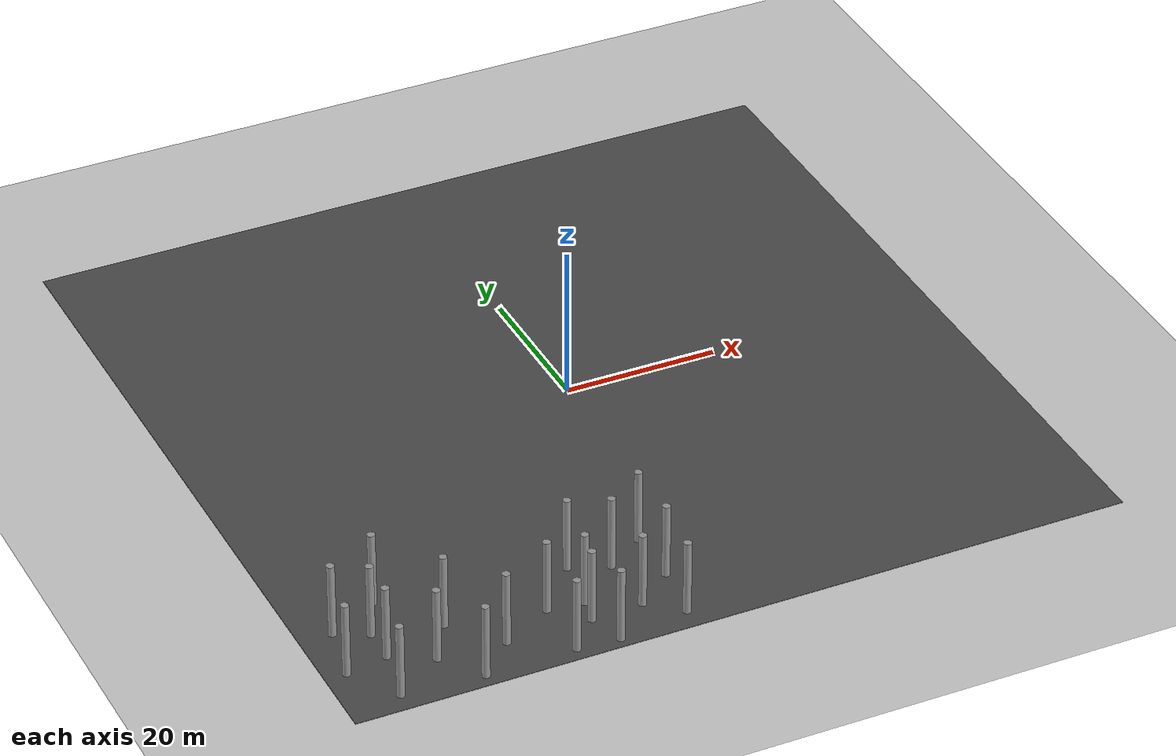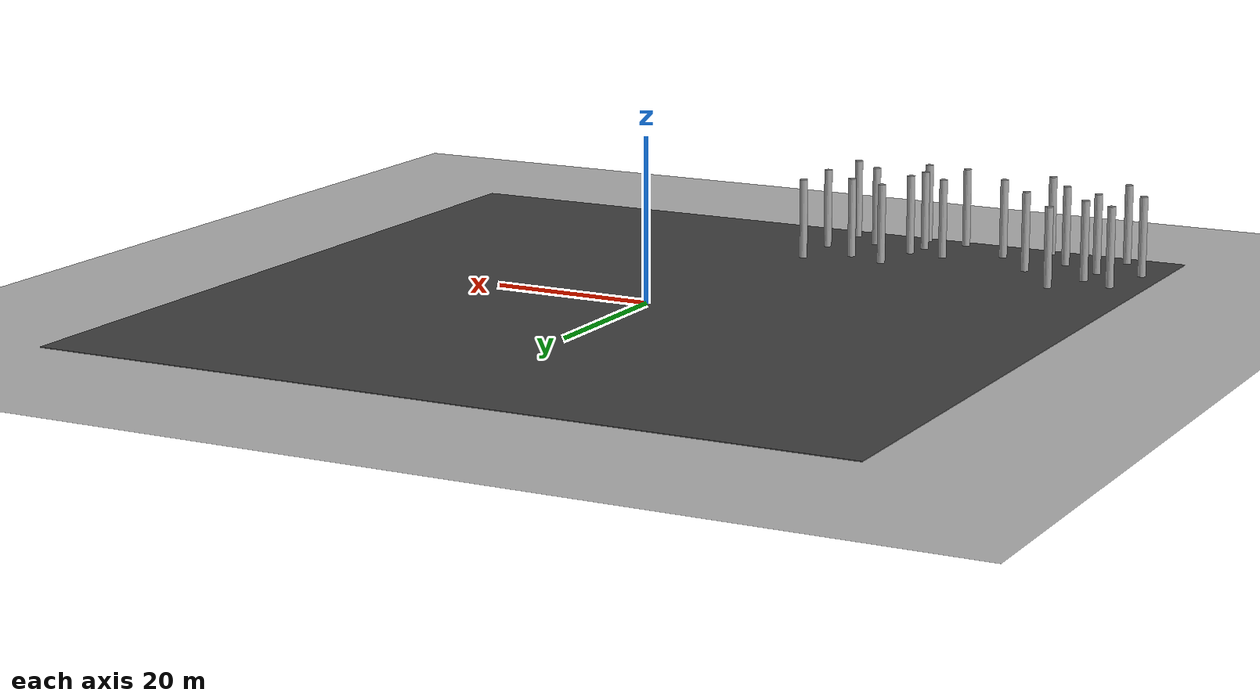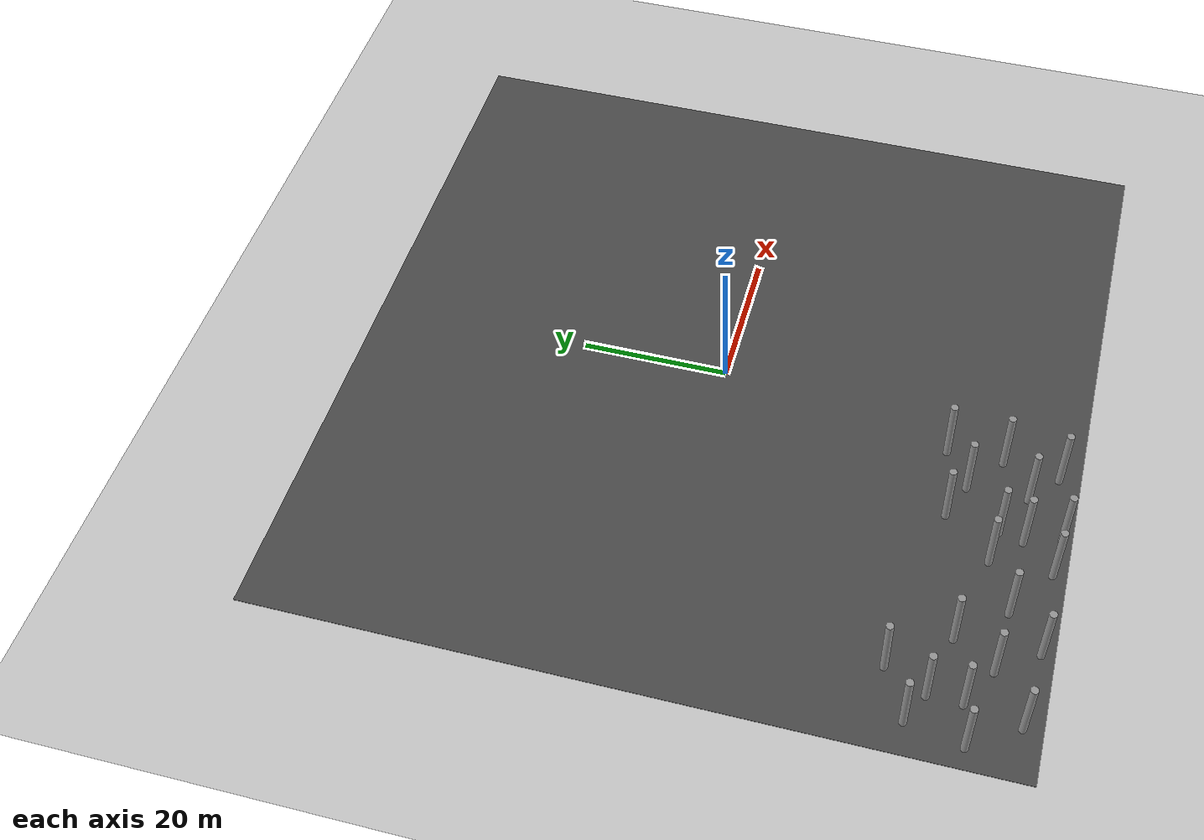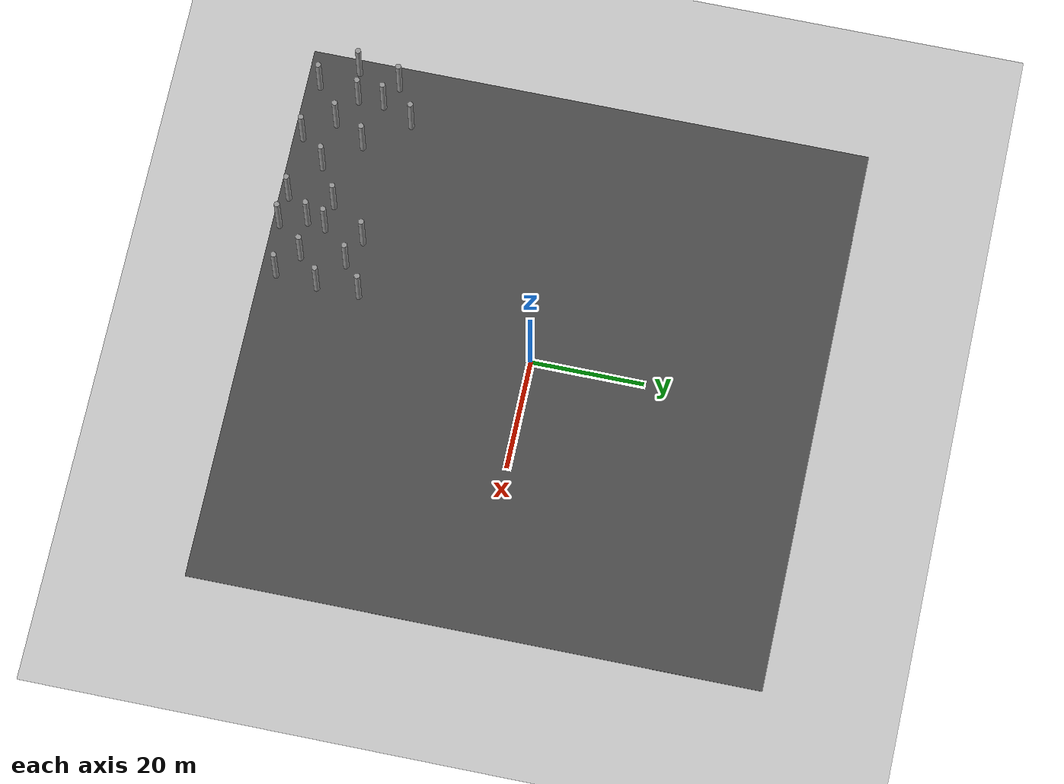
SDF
<sdf version="1.6">
 <world name="default">
  <model name="ground_plane">
   <static>1</static>
   <link name="link">
    <collision name="collision">
     <geometry><plane><normal>0 0 1</normal><size>100 100</size></plane></geometry>
     <surface><friction><ode><mu>100</mu><mu2>50</mu2></ode></friction></surface>
    </collision>
    <visual name="visual">
     <cast_shadows>0</cast_shadows>
     <geometry><plane><normal>0 0 1</normal><size>100 100</size></plane></geometry>
     <material>
      <script><uri>file://media/materials/scripts/gazebo.material</uri><name>Gazebo/Grey</name></script>
     </material>
    </visual>
   </link>
  </model>
  <model name="asphalt_plane">
   <static>1</static>
   <link name="link">
    <collision name="collision"><geometry><box><size>100 100 0.1</size></box></geometry></collision>
    <visual name="visual">
     <cast_shadows>0</cast_shadows>
     <geometry><box><size>100 100 0.1</size></box></geometry>
     <material>
      <script>
       <uri>model://asphalt_plane/materials/scripts</uri>
       <uri>model://asphalt_plane/materials/textures</uri>
       <name>vrc/asphalt</name>
      </script>
     </material>
    </visual>
   </link>
   <pose>0.078502 0.417861 0 0 -0 0</pose>
  </model>
  <model name="forest">
   <link name="link_clone_13_clone_21">
    <pose>-20.8987 -38.6392 0 0 -0 0</pose>
    <inertial>
     <mass>1000</mass>
     <inertia><ixx>0.145833</ixx><ixy>0</ixy><ixz>0</ixz><iyy>0.145833</iyy><iyz>0</iyz><izz>0.125</izz></inertia>
     <pose>0 0 5 0 -0 0</pose>
    </inertial>
    <visual name="visual">
     <geometry><cylinder><radius>0.5</radius><length>10</length></cylinder></geometry>
     <material>
      <script><name>Gazebo/Grey</name><uri>file://media/materials/scripts/gazebo.material</uri></script>
      <ambient>0.3 0.3 0.3 1</ambient>
      <diffuse>0.7 0.7 0.7 1</diffuse>
      <specular>0.01 0.01 0.01 1</specular>
      <emissive>0 0 0 1</emissive>
      <shader type="vertex"><normal_map>__default__</normal_map></shader>
     </material>
     <pose>0 0 5 0 -0 0</pose>
    </visual>
    <collision name="collision">
     <pose>0 0 5 0 -0 0</pose>
     <geometry><cylinder><radius>0.5</radius><length>10</length></cylinder></geometry>
     <surface>
      <friction>
       <ode><mu>1</mu><mu2>1</mu2><fdir1>0 0 0</fdir1><slip1>0</slip1><slip2>0</slip2></ode>
       <torsional>
        <coefficient>1</coefficient>
        <patch_radius>0</patch_radius>
        <surface_radius>0</surface_radius>
        <use_patch_radius>1</use_patch_radius>
        <ode><slip>0</slip></ode>
       </torsional>
      </friction>
      <bounce><restitution_coefficient>0</restitution_coefficient><threshold>1e+06</threshold></bounce>
      <contact>
       <collide_without_contact>0</collide_without_contact>
       <collide_without_contact_bitmask>1</collide_without_contact_bitmask>
       <collide_bitmask>1</collide_bitmask>
       <ode>
        <soft_cfm>0</soft_cfm>
        <soft_erp>0.2</soft_erp>
        <kp>1e+13</kp>
        <kd>1</kd>
        <max_vel>0.01</max_vel>
        <min_depth>0</min_depth>
       </ode>
       <bullet>
        <split_impulse>1</split_impulse>
        <split_impulse_penetration_threshold>-0.01</split_impulse_penetration_threshold>
        <soft_cfm>0</soft_cfm>
        <soft_erp>0.2</soft_erp>
        <kp>1e+13</kp>
        <kd>1</kd>
       </bullet>
      </contact>
     </surface>
    </collision>
   </link>
   <link name="link_clone_13_clone_23">
    <pose>-15.2761 -32.1957 0 0 -0 0</pose>
    <inertial>
     <mass>1000</mass>
     <inertia><ixx>0.145833</ixx><ixy>0</ixy><ixz>0</ixz><iyy>0.145833</iyy><iyz>0</iyz><izz>0.125</izz></inertia>
     <pose>0 0 5 0 -0 0</pose>
    </inertial>
    <visual name="visual">
     <geometry><cylinder><radius>0.5</radius><length>10</length></cylinder></geometry>
     <material>
      <script><name>Gazebo/Grey</name><uri>file://media/materials/scripts/gazebo.material</uri></script>
      <ambient>0.3 0.3 0.3 1</ambient>
      <diffuse>0.7 0.7 0.7 1</diffuse>
      <specular>0.01 0.01 0.01 1</specular>
      <emissive>0 0 0 1</emissive>
      <shader type="vertex"><normal_map>__default__</normal_map></shader>
     </material>
     <pose>0 0 5 0 -0 0</pose>
    </visual>
    <collision name="collision">
     <pose>0 0 5 0 -0 0</pose>
     <geometry><cylinder><radius>0.5</radius><length>10</length></cylinder></geometry>
     <surface>
      <friction>
       <ode><mu>1</mu><mu2>1</mu2><fdir1>0 0 0</fdir1><slip1>0</slip1><slip2>0</slip2></ode>
       <torsional>
        <coefficient>1</coefficient>
        <patch_radius>0</patch_radius>
        <surface_radius>0</surface_radius>
        <use_patch_radius>1</use_patch_radius>
        <ode><slip>0</slip></ode>
       </torsional>
      </friction>
      <bounce><restitution_coefficient>0</restitution_coefficient><threshold>1e+06</threshold></bounce>
      <contact>
       <collide_without_contact>0</collide_without_contact>
       <collide_without_contact_bitmask>1</collide_without_contact_bitmask>
       <collide_bitmask>1</collide_bitmask>
       <ode>
        <soft_cfm>0</soft_cfm>
        <soft_erp>0.2</soft_erp>
        <kp>1e+13</kp>
        <kd>1</kd>
        <max_vel>0.01</max_vel>
        <min_depth>0</min_depth>
       </ode>
       <bullet>
        <split_impulse>1</split_impulse>
        <split_impulse_penetration_threshold>-0.01</split_impulse_penetration_threshold>
        <soft_cfm>0</soft_cfm>
        <soft_erp>0.2</soft_erp>
        <kp>1e+13</kp>
        <kd>1</kd>
       </bullet>
      </contact>
     </surface>
    </collision>
   </link>
   <link name="link_clone_13_clone_34">
    <pose>-10.4222 -34.1179 -0 0 -0 0</pose>
    <inertial>
     <mass>1000</mass>
     <inertia><ixx>0.145833</ixx><ixy>0</ixy><ixz>0</ixz><iyy>0.145833</iyy><iyz>0</iyz><izz>0.125</izz></inertia>
     <pose>0 0 5 0 -0 0</pose>
    </inertial>
    <visual name="visual">
     <geometry><cylinder><radius>0.5</radius><length>10</length></cylinder></geometry>
     <material>
      <script><name>Gazebo/Grey</name><uri>file://media/materials/scripts/gazebo.material</uri></script>
      <ambient>0.3 0.3 0.3 1</ambient>
      <diffuse>0.7 0.7 0.7 1</diffuse>
      <specular>0.01 0.01 0.01 1</specular>
      <emissive>0 0 0 1</emissive>
      <shader type="vertex"><normal_map>__default__</normal_map></shader>
     </material>
     <pose>0 0 5 0 -0 0</pose>
    </visual>
    <collision name="collision">
     <pose>0 0 5 0 -0 0</pose>
     <geometry><cylinder><radius>0.5</radius><length>10</length></cylinder></geometry>
     <surface>
      <friction>
       <ode><mu>1</mu><mu2>1</mu2><fdir1>0 0 0</fdir1><slip1>0</slip1><slip2>0</slip2></ode>
       <torsional>
        <coefficient>1</coefficient>
        <patch_radius>0</patch_radius>
        <surface_radius>0</surface_radius>
        <use_patch_radius>1</use_patch_radius>
        <ode><slip>0</slip></ode>
       </torsional>
      </friction>
      <bounce><restitution_coefficient>0</restitution_coefficient><threshold>1e+06</threshold></bounce>
      <contact>
       <collide_without_contact>0</collide_without_contact>
       <collide_without_contact_bitmask>1</collide_without_contact_bitmask>
       <collide_bitmask>1</collide_bitmask>
       <ode>
        <soft_cfm>0</soft_cfm>
        <soft_erp>0.2</soft_erp>
        <kp>1e+13</kp>
        <kd>1</kd>
        <max_vel>0.01</max_vel>
        <min_depth>0</min_depth>
       </ode>
       <bullet>
        <split_impulse>1</split_impulse>
        <split_impulse_penetration_threshold>-0.01</split_impulse_penetration_threshold>
        <soft_cfm>0</soft_cfm>
        <soft_erp>0.2</soft_erp>
        <kp>1e+13</kp>
        <kd>1</kd>
       </bullet>
      </contact>
     </surface>
    </collision>
   </link>
   <link name="link_clone_13_clone_35">
    <pose>-10.2761 -42.1957 -0 0 -0 0</pose>
    <inertial>
     <mass>1000</mass>
     <inertia><ixx>0.145833</ixx><ixy>0</ixy><ixz>0</ixz><iyy>0.145833</iyy><iyz>0</iyz><izz>0.125</izz></inertia>
     <pose>0 0 5 0 -0 0</pose>
    </inertial>
    <visual name="visual">
     <geometry><cylinder><radius>0.5</radius><length>10</length></cylinder></geometry>
     <material>
      <script><name>Gazebo/Grey</name><uri>file://media/materials/scripts/gazebo.material</uri></script>
      <ambient>0.3 0.3 0.3 1</ambient>
      <diffuse>0.7 0.7 0.7 1</diffuse>
      <specular>0.01 0.01 0.01 1</specular>
      <emissive>0 0 0 1</emissive>
      <shader type="vertex"><normal_map>__default__</normal_map></shader>
     </material>
     <pose>0 0 5 0 -0 0</pose>
    </visual>
    <collision name="collision">
     <pose>0 0 5 0 -0 0</pose>
     <geometry><cylinder><radius>0.5</radius><length>10</length></cylinder></geometry>
     <surface>
      <friction>
       <ode><mu>1</mu><mu2>1</mu2><fdir1>0 0 0</fdir1><slip1>0</slip1><slip2>0</slip2></ode>
       <torsional>
        <coefficient>1</coefficient>
        <patch_radius>0</patch_radius>
        <surface_radius>0</surface_radius>
        <use_patch_radius>1</use_patch_radius>
        <ode><slip>0</slip></ode>
       </torsional>
      </friction>
      <bounce><restitution_coefficient>0</restitution_coefficient><threshold>1e+06</threshold></bounce>
      <contact>
       <collide_without_contact>0</collide_without_contact>
       <collide_without_contact_bitmask>1</collide_without_contact_bitmask>
       <collide_bitmask>1</collide_bitmask>
       <ode>
        <soft_cfm>0</soft_cfm>
        <soft_erp>0.2</soft_erp>
        <kp>1e+13</kp>
        <kd>1</kd>
        <max_vel>0.01</max_vel>
        <min_depth>0</min_depth>
       </ode>
       <bullet>
        <split_impulse>1</split_impulse>
        <split_impulse_penetration_threshold>-0.01</split_impulse_penetration_threshold>
        <soft_cfm>0</soft_cfm>
        <soft_erp>0.2</soft_erp>
        <kp>1e+13</kp>
        <kd>1</kd>
       </bullet>
      </contact>
     </surface>
    </collision>
   </link>
   <link name="link_clone_13_clone_36">
    <pose>-16.9268 -42.4538 -0 0 -0 0</pose>
    <inertial>
     <mass>1000</mass>
     <inertia><ixx>0.145833</ixx><ixy>0</ixy><ixz>0</ixz><iyy>0.145833</iyy><iyz>0</iyz><izz>0.125</izz></inertia>
     <pose>0 0 5 0 -0 0</pose>
    </inertial>
    <visual name="visual">
     <geometry><cylinder><radius>0.5</radius><length>10</length></cylinder></geometry>
     <material>
      <script><name>Gazebo/Grey</name><uri>file://media/materials/scripts/gazebo.material</uri></script>
      <ambient>0.3 0.3 0.3 1</ambient>
      <diffuse>0.7 0.7 0.7 1</diffuse>
      <specular>0.01 0.01 0.01 1</specular>
      <emissive>0 0 0 1</emissive>
      <shader type="vertex"><normal_map>__default__</normal_map></shader>
     </material>
     <pose>0 0 5 0 -0 0</pose>
    </visual>
    <collision name="collision">
     <pose>0 0 5 0 -0 0</pose>
     <geometry><cylinder><radius>0.5</radius><length>10</length></cylinder></geometry>
     <surface>
      <friction>
       <ode><mu>1</mu><mu2>1</mu2><fdir1>0 0 0</fdir1><slip1>0</slip1><slip2>0</slip2></ode>
       <torsional>
        <coefficient>1</coefficient>
        <patch_radius>0</patch_radius>
        <surface_radius>0</surface_radius>
        <use_patch_radius>1</use_patch_radius>
        <ode><slip>0</slip></ode>
       </torsional>
      </friction>
      <bounce><restitution_coefficient>0</restitution_coefficient><threshold>1e+06</threshold></bounce>
      <contact>
       <collide_without_contact>0</collide_without_contact>
       <collide_without_contact_bitmask>1</collide_without_contact_bitmask>
       <collide_bitmask>1</collide_bitmask>
       <ode>
        <soft_cfm>0</soft_cfm>
        <soft_erp>0.2</soft_erp>
        <kp>1e+13</kp>
        <kd>1</kd>
        <max_vel>0.01</max_vel>
        <min_depth>0</min_depth>
       </ode>
       <bullet>
        <split_impulse>1</split_impulse>
        <split_impulse_penetration_threshold>-0.01</split_impulse_penetration_threshold>
        <soft_cfm>0</soft_cfm>
        <soft_erp>0.2</soft_erp>
        <kp>1e+13</kp>
        <kd>1</kd>
       </bullet>
      </contact>
     </surface>
    </collision>
   </link>
   <link name="link_clone_13_clone_37">
    <pose>-16.2761 -39.1957 -0 0 -0 0</pose>
    <inertial>
     <mass>1000</mass>
     <inertia><ixx>0.145833</ixx><ixy>0</ixy><ixz>0</ixz><iyy>0.145833</iyy><iyz>0</iyz><izz>0.125</izz></inertia>
     <pose>0 0 5 0 -0 0</pose>
    </inertial>
    <visual name="visual">
     <geometry><cylinder><radius>0.5</radius><length>10</length></cylinder></geometry>
     <material>
      <script><name>Gazebo/Grey</name><uri>file://media/materials/scripts/gazebo.material</uri></script>
      <ambient>0.3 0.3 0.3 1</ambient>
      <diffuse>0.7 0.7 0.7 1</diffuse>
      <specular>0.01 0.01 0.01 1</specular>
      <emissive>0 0 0 1</emissive>
      <shader type="vertex"><normal_map>__default__</normal_map></shader>
     </material>
     <pose>0 0 5 0 -0 0</pose>
    </visual>
    <collision name="collision">
     <pose>0 0 5 0 -0 0</pose>
     <geometry><cylinder><radius>0.5</radius><length>10</length></cylinder></geometry>
     <surface>
      <friction>
       <ode><mu>1</mu><mu2>1</mu2><fdir1>0 0 0</fdir1><slip1>0</slip1><slip2>0</slip2></ode>
       <torsional>
        <coefficient>1</coefficient>
        <patch_radius>0</patch_radius>
        <surface_radius>0</surface_radius>
        <use_patch_radius>1</use_patch_radius>
        <ode><slip>0</slip></ode>
       </torsional>
      </friction>
      <bounce><restitution_coefficient>0</restitution_coefficient><threshold>1e+06</threshold></bounce>
      <contact>
       <collide_without_contact>0</collide_without_contact>
       <collide_without_contact_bitmask>1</collide_without_contact_bitmask>
       <collide_bitmask>1</collide_bitmask>
       <ode>
        <soft_cfm>0</soft_cfm>
        <soft_erp>0.2</soft_erp>
        <kp>1e+13</kp>
        <kd>1</kd>
        <max_vel>0.01</max_vel>
        <min_depth>0</min_depth>
       </ode>
       <bullet>
        <split_impulse>1</split_impulse>
        <split_impulse_penetration_threshold>-0.01</split_impulse_penetration_threshold>
        <soft_cfm>0</soft_cfm>
        <soft_erp>0.2</soft_erp>
        <kp>1e+13</kp>
        <kd>1</kd>
       </bullet>
      </contact>
     </surface>
    </collision>
   </link>
   <link name="link_clone_13_clone_40">
    <pose>-5.27612 -30.7158 -0 0 -0 0</pose>
    <inertial>
     <mass>1000</mass>
     <inertia><ixx>0.145833</ixx><ixy>0</ixy><ixz>0</ixz><iyy>0.145833</iyy><iyz>0</iyz><izz>0.125</izz></inertia>
     <pose>0 0 5 0 -0 0</pose>
    </inertial>
    <visual name="visual">
     <geometry><cylinder><radius>0.5</radius><length>10</length></cylinder></geometry>
     <material>
      <script><name>Gazebo/Grey</name><uri>file://media/materials/scripts/gazebo.material</uri></script>
      <ambient>0.3 0.3 0.3 1</ambient>
      <diffuse>0.7 0.7 0.7 1</diffuse>
      <specular>0.01 0.01 0.01 1</specular>
      <emissive>0 0 0 1</emissive>
      <shader type="vertex"><normal_map>__default__</normal_map></shader>
     </material>
     <pose>0 0 5 0 -0 0</pose>
    </visual>
    <collision name="collision">
     <pose>0 0 5 0 -0 0</pose>
     <geometry><cylinder><radius>0.5</radius><length>10</length></cylinder></geometry>
     <surface>
      <friction>
       <ode><mu>1</mu><mu2>1</mu2><fdir1>0 0 0</fdir1><slip1>0</slip1><slip2>0</slip2></ode>
       <torsional>
        <coefficient>1</coefficient>
        <patch_radius>0</patch_radius>
        <surface_radius>0</surface_radius>
        <use_patch_radius>1</use_patch_radius>
        <ode><slip>0</slip></ode>
       </torsional>
      </friction>
      <bounce><restitution_coefficient>0</restitution_coefficient><threshold>1e+06</threshold></bounce>
      <contact>
       <collide_without_contact>0</collide_without_contact>
       <collide_without_contact_bitmask>1</collide_without_contact_bitmask>
       <collide_bitmask>1</collide_bitmask>
       <ode>
        <soft_cfm>0</soft_cfm>
        <soft_erp>0.2</soft_erp>
        <kp>1e+13</kp>
        <kd>1</kd>
        <max_vel>0.01</max_vel>
        <min_depth>0</min_depth>
       </ode>
       <bullet>
        <split_impulse>1</split_impulse>
        <split_impulse_penetration_threshold>-0.01</split_impulse_penetration_threshold>
        <soft_cfm>0</soft_cfm>
        <soft_erp>0.2</soft_erp>
        <kp>1e+13</kp>
        <kd>1</kd>
       </bullet>
      </contact>
     </surface>
    </collision>
   </link>
   <link name="link_clone_13_clone_41">
    <pose>-5.27612 -38.1957 -0 0 -0 0</pose>
    <inertial>
     <mass>1000</mass>
     <inertia><ixx>0.145833</ixx><ixy>0</ixy><ixz>0</ixz><iyy>0.145833</iyy><iyz>0</iyz><izz>0.125</izz></inertia>
     <pose>0 0 5 0 -0 0</pose>
    </inertial>
    <visual name="visual">
     <geometry><cylinder><radius>0.5</radius><length>10</length></cylinder></geometry>
     <material>
      <script><name>Gazebo/Grey</name><uri>file://media/materials/scripts/gazebo.material</uri></script>
      <ambient>0.3 0.3 0.3 1</ambient>
      <diffuse>0.7 0.7 0.7 1</diffuse>
      <specular>0.01 0.01 0.01 1</specular>
      <emissive>0 0 0 1</emissive>
      <shader type="vertex"><normal_map>__default__</normal_map></shader>
     </material>
     <pose>0 0 5 0 -0 0</pose>
    </visual>
    <collision name="collision">
     <pose>0 0 5 0 -0 0</pose>
     <geometry><cylinder><radius>0.5</radius><length>10</length></cylinder></geometry>
     <surface>
      <friction>
       <ode><mu>1</mu><mu2>1</mu2><fdir1>0 0 0</fdir1><slip1>0</slip1><slip2>0</slip2></ode>
       <torsional>
        <coefficient>1</coefficient>
        <patch_radius>0</patch_radius>
        <surface_radius>0</surface_radius>
        <use_patch_radius>1</use_patch_radius>
        <ode><slip>0</slip></ode>
       </torsional>
      </friction>
      <bounce><restitution_coefficient>0</restitution_coefficient><threshold>1e+06</threshold></bounce>
      <contact>
       <collide_without_contact>0</collide_without_contact>
       <collide_without_contact_bitmask>1</collide_without_contact_bitmask>
       <collide_bitmask>1</collide_bitmask>
       <ode>
        <soft_cfm>0</soft_cfm>
        <soft_erp>0.2</soft_erp>
        <kp>1e+13</kp>
        <kd>1</kd>
        <max_vel>0.01</max_vel>
        <min_depth>0</min_depth>
       </ode>
       <bullet>
        <split_impulse>1</split_impulse>
        <split_impulse_penetration_threshold>-0.01</split_impulse_penetration_threshold>
        <soft_cfm>0</soft_cfm>
        <soft_erp>0.2</soft_erp>
        <kp>1e+13</kp>
        <kd>1</kd>
       </bullet>
      </contact>
     </surface>
    </collision>
   </link>
   <link name="link_clone_13_clone_42">
    <pose>-6.22283 -45.706 -0 0 -0 0</pose>
    <inertial>
     <mass>1000</mass>
     <inertia><ixx>0.145833</ixx><ixy>0</ixy><ixz>0</ixz><iyy>0.145833</iyy><iyz>0</iyz><izz>0.125</izz></inertia>
     <pose>0 0 5 0 -0 0</pose>
    </inertial>
    <visual name="visual">
     <geometry><cylinder><radius>0.5</radius><length>10</length></cylinder></geometry>
     <material>
      <script><name>Gazebo/Grey</name><uri>file://media/materials/scripts/gazebo.material</uri></script>
      <ambient>0.3 0.3 0.3 1</ambient>
      <diffuse>0.7 0.7 0.7 1</diffuse>
      <specular>0.01 0.01 0.01 1</specular>
      <emissive>0 0 0 1</emissive>
      <shader type="vertex"><normal_map>__default__</normal_map></shader>
     </material>
     <pose>0 0 5 0 -0 0</pose>
    </visual>
    <collision name="collision">
     <pose>0 0 5 0 -0 0</pose>
     <geometry><cylinder><radius>0.5</radius><length>10</length></cylinder></geometry>
     <surface>
      <friction>
       <ode><mu>1</mu><mu2>1</mu2><fdir1>0 0 0</fdir1><slip1>0</slip1><slip2>0</slip2></ode>
       <torsional>
        <coefficient>1</coefficient>
        <patch_radius>0</patch_radius>
        <surface_radius>0</surface_radius>
        <use_patch_radius>1</use_patch_radius>
        <ode><slip>0</slip></ode>
       </torsional>
      </friction>
      <bounce><restitution_coefficient>0</restitution_coefficient><threshold>1e+06</threshold></bounce>
      <contact>
       <collide_without_contact>0</collide_without_contact>
       <collide_without_contact_bitmask>1</collide_without_contact_bitmask>
       <collide_bitmask>1</collide_bitmask>
       <ode>
        <soft_cfm>0</soft_cfm>
        <soft_erp>0.2</soft_erp>
        <kp>1e+13</kp>
        <kd>1</kd>
        <max_vel>0.01</max_vel>
        <min_depth>0</min_depth>
       </ode>
       <bullet>
        <split_impulse>1</split_impulse>
        <split_impulse_penetration_threshold>-0.01</split_impulse_penetration_threshold>
        <soft_cfm>0</soft_cfm>
        <soft_erp>0.2</soft_erp>
        <kp>1e+13</kp>
        <kd>1</kd>
       </bullet>
      </contact>
     </surface>
    </collision>
   </link>
   <link name="link_clone_13_clone_43">
    <pose>-15.4779 -47.2041 -0 0 -0 0</pose>
    <inertial>
     <mass>1000</mass>
     <inertia><ixx>0.145833</ixx><ixy>0</ixy><ixz>0</ixz><iyy>0.145833</iyy><iyz>0</iyz><izz>0.125</izz></inertia>
     <pose>0 0 5 0 -0 0</pose>
    </inertial>
    <visual name="visual">
     <geometry><cylinder><radius>0.5</radius><length>10</length></cylinder></geometry>
     <material>
      <script><name>Gazebo/Grey</name><uri>file://media/materials/scripts/gazebo.material</uri></script>
      <ambient>0.3 0.3 0.3 1</ambient>
      <diffuse>0.7 0.7 0.7 1</diffuse>
      <specular>0.01 0.01 0.01 1</specular>
      <emissive>0 0 0 1</emissive>
      <shader type="vertex"><normal_map>__default__</normal_map></shader>
     </material>
     <pose>0 0 5 0 -0 0</pose>
    </visual>
    <collision name="collision">
     <pose>0 0 5 0 -0 0</pose>
     <geometry><cylinder><radius>0.5</radius><length>10</length></cylinder></geometry>
     <surface>
      <friction>
       <ode><mu>1</mu><mu2>1</mu2><fdir1>0 0 0</fdir1><slip1>0</slip1><slip2>0</slip2></ode>
       <torsional>
        <coefficient>1</coefficient>
        <patch_radius>0</patch_radius>
        <surface_radius>0</surface_radius>
        <use_patch_radius>1</use_patch_radius>
        <ode><slip>0</slip></ode>
       </torsional>
      </friction>
      <bounce><restitution_coefficient>0</restitution_coefficient><threshold>1e+06</threshold></bounce>
      <contact>
       <collide_without_contact>0</collide_without_contact>
       <collide_without_contact_bitmask>1</collide_without_contact_bitmask>
       <collide_bitmask>1</collide_bitmask>
       <ode>
        <soft_cfm>0</soft_cfm>
        <soft_erp>0.2</soft_erp>
        <kp>1e+13</kp>
        <kd>1</kd>
        <max_vel>0.01</max_vel>
        <min_depth>0</min_depth>
       </ode>
       <bullet>
        <split_impulse>1</split_impulse>
        <split_impulse_penetration_threshold>-0.01</split_impulse_penetration_threshold>
        <soft_cfm>0</soft_cfm>
        <soft_erp>0.2</soft_erp>
        <kp>1e+13</kp>
        <kd>1</kd>
       </bullet>
      </contact>
     </surface>
    </collision>
   </link>
   <link name="link_clone_13_clone_84">
    <pose>-41.2761 -34.1957 0 0 -0 0</pose>
    <inertial>
     <mass>1000</mass>
     <inertia><ixx>0.145833</ixx><ixy>0</ixy><ixz>0</ixz><iyy>0.145833</iyy><iyz>0</iyz><izz>0.125</izz></inertia>
     <pose>0 0 5 0 -0 0</pose>
    </inertial>
    <visual name="visual">
     <geometry><cylinder><radius>0.5</radius><length>10</length></cylinder></geometry>
     <material>
      <script><name>Gazebo/Grey</name><uri>file://media/materials/scripts/gazebo.material</uri></script>
      <ambient>0.3 0.3 0.3 1</ambient>
      <diffuse>0.7 0.7 0.7 1</diffuse>
      <specular>0.01 0.01 0.01 1</specular>
      <emissive>0 0 0 1</emissive>
      <shader type="vertex"><normal_map>__default__</normal_map></shader>
     </material>
     <pose>0 0 5 0 -0 0</pose>
    </visual>
    <collision name="collision">
     <pose>0 0 5 0 -0 0</pose>
     <geometry><cylinder><radius>0.5</radius><length>10</length></cylinder></geometry>
     <surface>
      <friction>
       <ode><mu>1</mu><mu2>1</mu2><fdir1>0 0 0</fdir1><slip1>0</slip1><slip2>0</slip2></ode>
       <torsional>
        <coefficient>1</coefficient>
        <patch_radius>0</patch_radius>
        <surface_radius>0</surface_radius>
        <use_patch_radius>1</use_patch_radius>
        <ode><slip>0</slip></ode>
       </torsional>
      </friction>
      <bounce><restitution_coefficient>0</restitution_coefficient><threshold>1e+06</threshold></bounce>
      <contact>
       <collide_without_contact>0</collide_without_contact>
       <collide_without_contact_bitmask>1</collide_without_contact_bitmask>
       <collide_bitmask>1</collide_bitmask>
       <ode>
        <soft_cfm>0</soft_cfm>
        <soft_erp>0.2</soft_erp>
        <kp>1e+13</kp>
        <kd>1</kd>
        <max_vel>0.01</max_vel>
        <min_depth>0</min_depth>
       </ode>
       <bullet>
        <split_impulse>1</split_impulse>
        <split_impulse_penetration_threshold>-0.01</split_impulse_penetration_threshold>
        <soft_cfm>0</soft_cfm>
        <soft_erp>0.2</soft_erp>
        <kp>1e+13</kp>
        <kd>1</kd>
       </bullet>
      </contact>
     </surface>
    </collision>
   </link>
   <link name="link_clone_13_clone_85">
    <pose>-36.2102 -41.6305 0 0 -0 0</pose>
    <inertial>
     <mass>1000</mass>
     <inertia><ixx>0.145833</ixx><ixy>0</ixy><ixz>0</ixz><iyy>0.145833</iyy><iyz>0</iyz><izz>0.125</izz></inertia>
     <pose>0 0 5 0 -0 0</pose>
    </inertial>
    <visual name="visual">
     <geometry><cylinder><radius>0.5</radius><length>10</length></cylinder></geometry>
     <material>
      <script><name>Gazebo/Grey</name><uri>file://media/materials/scripts/gazebo.material</uri></script>
      <ambient>0.3 0.3 0.3 1</ambient>
      <diffuse>0.7 0.7 0.7 1</diffuse>
      <specular>0.01 0.01 0.01 1</specular>
      <emissive>0 0 0 1</emissive>
      <shader type="vertex"><normal_map>__default__</normal_map></shader>
     </material>
     <pose>0 0 5 0 -0 0</pose>
    </visual>
    <collision name="collision">
     <pose>0 0 5 0 -0 0</pose>
     <geometry><cylinder><radius>0.5</radius><length>10</length></cylinder></geometry>
     <surface>
      <friction>
       <ode><mu>1</mu><mu2>1</mu2><fdir1>0 0 0</fdir1><slip1>0</slip1><slip2>0</slip2></ode>
       <torsional>
        <coefficient>1</coefficient>
        <patch_radius>0</patch_radius>
        <surface_radius>0</surface_radius>
        <use_patch_radius>1</use_patch_radius>
        <ode><slip>0</slip></ode>
       </torsional>
      </friction>
      <bounce><restitution_coefficient>0</restitution_coefficient><threshold>1e+06</threshold></bounce>
      <contact>
       <collide_without_contact>0</collide_without_contact>
       <collide_without_contact_bitmask>1</collide_without_contact_bitmask>
       <collide_bitmask>1</collide_bitmask>
       <ode>
        <soft_cfm>0</soft_cfm>
        <soft_erp>0.2</soft_erp>
        <kp>1e+13</kp>
        <kd>1</kd>
        <max_vel>0.01</max_vel>
        <min_depth>0</min_depth>
       </ode>
       <bullet>
        <split_impulse>1</split_impulse>
        <split_impulse_penetration_threshold>-0.01</split_impulse_penetration_threshold>
        <soft_cfm>0</soft_cfm>
        <soft_erp>0.2</soft_erp>
        <kp>1e+13</kp>
        <kd>1</kd>
       </bullet>
      </contact>
     </surface>
    </collision>
   </link>
   <link name="link_clone_13_clone_86">
    <pose>-42.7263 -46.0342 0 0 -0 0</pose>
    <inertial>
     <mass>1000</mass>
     <inertia><ixx>0.145833</ixx><ixy>0</ixy><ixz>0</ixz><iyy>0.145833</iyy><iyz>0</iyz><izz>0.125</izz></inertia>
     <pose>0 0 5 0 -0 0</pose>
    </inertial>
    <visual name="visual">
     <geometry><cylinder><radius>0.5</radius><length>10</length></cylinder></geometry>
     <material>
      <script><name>Gazebo/Grey</name><uri>file://media/materials/scripts/gazebo.material</uri></script>
      <ambient>0.3 0.3 0.3 1</ambient>
      <diffuse>0.7 0.7 0.7 1</diffuse>
      <specular>0.01 0.01 0.01 1</specular>
      <emissive>0 0 0 1</emissive>
      <shader type="vertex"><normal_map>__default__</normal_map></shader>
     </material>
     <pose>0 0 5 0 -0 0</pose>
    </visual>
    <collision name="collision">
     <pose>0 0 5 0 -0 0</pose>
     <geometry><cylinder><radius>0.5</radius><length>10</length></cylinder></geometry>
     <surface>
      <friction>
       <ode><mu>1</mu><mu2>1</mu2><fdir1>0 0 0</fdir1><slip1>0</slip1><slip2>0</slip2></ode>
       <torsional>
        <coefficient>1</coefficient>
        <patch_radius>0</patch_radius>
        <surface_radius>0</surface_radius>
        <use_patch_radius>1</use_patch_radius>
        <ode><slip>0</slip></ode>
       </torsional>
      </friction>
      <bounce><restitution_coefficient>0</restitution_coefficient><threshold>1e+06</threshold></bounce>
      <contact>
       <collide_without_contact>0</collide_without_contact>
       <collide_without_contact_bitmask>1</collide_without_contact_bitmask>
       <collide_bitmask>1</collide_bitmask>
       <ode>
        <soft_cfm>0</soft_cfm>
        <soft_erp>0.2</soft_erp>
        <kp>1e+13</kp>
        <kd>1</kd>
        <max_vel>0.01</max_vel>
        <min_depth>0</min_depth>
       </ode>
       <bullet>
        <split_impulse>1</split_impulse>
        <split_impulse_penetration_threshold>-0.01</split_impulse_penetration_threshold>
        <soft_cfm>0</soft_cfm>
        <soft_erp>0.2</soft_erp>
        <kp>1e+13</kp>
        <kd>1</kd>
       </bullet>
      </contact>
     </surface>
    </collision>
   </link>
   <link name="link_clone_13_clone_87">
    <pose>-41.3012 -38.7598 0 0 -0 0</pose>
    <inertial>
     <mass>1000</mass>
     <inertia><ixx>0.145833</ixx><ixy>0</ixy><ixz>0</ixz><iyy>0.145833</iyy><iyz>0</iyz><izz>0.125</izz></inertia>
     <pose>0 0 5 0 -0 0</pose>
    </inertial>
    <visual name="visual">
     <geometry><cylinder><radius>0.5</radius><length>10</length></cylinder></geometry>
     <material>
      <script><name>Gazebo/Grey</name><uri>file://media/materials/scripts/gazebo.material</uri></script>
      <ambient>0.3 0.3 0.3 1</ambient>
      <diffuse>0.7 0.7 0.7 1</diffuse>
      <specular>0.01 0.01 0.01 1</specular>
      <emissive>0 0 0 1</emissive>
      <shader type="vertex"><normal_map>__default__</normal_map></shader>
     </material>
     <pose>0 0 5 0 -0 0</pose>
    </visual>
    <collision name="collision">
     <pose>0 0 5 0 -0 0</pose>
     <geometry><cylinder><radius>0.5</radius><length>10</length></cylinder></geometry>
     <surface>
      <friction>
       <ode><mu>1</mu><mu2>1</mu2><fdir1>0 0 0</fdir1><slip1>0</slip1><slip2>0</slip2></ode>
       <torsional>
        <coefficient>1</coefficient>
        <patch_radius>0</patch_radius>
        <surface_radius>0</surface_radius>
        <use_patch_radius>1</use_patch_radius>
        <ode><slip>0</slip></ode>
       </torsional>
      </friction>
      <bounce><restitution_coefficient>0</restitution_coefficient><threshold>1e+06</threshold></bounce>
      <contact>
       <collide_without_contact>0</collide_without_contact>
       <collide_without_contact_bitmask>1</collide_without_contact_bitmask>
       <collide_bitmask>1</collide_bitmask>
       <ode>
        <soft_cfm>0</soft_cfm>
        <soft_erp>0.2</soft_erp>
        <kp>1e+13</kp>
        <kd>1</kd>
        <max_vel>0.01</max_vel>
        <min_depth>0</min_depth>
       </ode>
       <bullet>
        <split_impulse>1</split_impulse>
        <split_impulse_penetration_threshold>-0.01</split_impulse_penetration_threshold>
        <soft_cfm>0</soft_cfm>
        <soft_erp>0.2</soft_erp>
        <kp>1e+13</kp>
        <kd>1</kd>
       </bullet>
      </contact>
     </surface>
    </collision>
   </link>
   <link name="link_clone_13_clone_88">
    <pose>-32.9038 -36.1361 0 0 -0 0</pose>
    <inertial>
     <mass>1000</mass>
     <inertia><ixx>0.145833</ixx><ixy>0</ixy><ixz>0</ixz><iyy>0.145833</iyy><iyz>0</iyz><izz>0.125</izz></inertia>
     <pose>0 0 5 0 -0 0</pose>
    </inertial>
    <visual name="visual">
     <geometry><cylinder><radius>0.5</radius><length>10</length></cylinder></geometry>
     <material>
      <script><name>Gazebo/Grey</name><uri>file://media/materials/scripts/gazebo.material</uri></script>
      <ambient>0.3 0.3 0.3 1</ambient>
      <diffuse>0.7 0.7 0.7 1</diffuse>
      <specular>0.01 0.01 0.01 1</specular>
      <emissive>0 0 0 1</emissive>
      <shader type="vertex"><normal_map>__default__</normal_map></shader>
     </material>
     <pose>0 0 5 0 -0 0</pose>
    </visual>
    <collision name="collision">
     <pose>0 0 5 0 -0 0</pose>
     <geometry><cylinder><radius>0.5</radius><length>10</length></cylinder></geometry>
     <surface>
      <friction>
       <ode><mu>1</mu><mu2>1</mu2><fdir1>0 0 0</fdir1><slip1>0</slip1><slip2>0</slip2></ode>
       <torsional>
        <coefficient>1</coefficient>
        <patch_radius>0</patch_radius>
        <surface_radius>0</surface_radius>
        <use_patch_radius>1</use_patch_radius>
        <ode><slip>0</slip></ode>
       </torsional>
      </friction>
      <bounce><restitution_coefficient>0</restitution_coefficient><threshold>1e+06</threshold></bounce>
      <contact>
       <collide_without_contact>0</collide_without_contact>
       <collide_without_contact_bitmask>1</collide_without_contact_bitmask>
       <collide_bitmask>1</collide_bitmask>
       <ode>
        <soft_cfm>0</soft_cfm>
        <soft_erp>0.2</soft_erp>
        <kp>1e+13</kp>
        <kd>1</kd>
        <max_vel>0.01</max_vel>
        <min_depth>0</min_depth>
       </ode>
       <bullet>
        <split_impulse>1</split_impulse>
        <split_impulse_penetration_threshold>-0.01</split_impulse_penetration_threshold>
        <soft_cfm>0</soft_cfm>
        <soft_erp>0.2</soft_erp>
        <kp>1e+13</kp>
        <kd>1</kd>
       </bullet>
      </contact>
     </surface>
    </collision>
   </link>
   <link name="link_clone_13_clone_89">
    <pose>-27.687 -42.1957 0 0 -0 0</pose>
    <inertial>
     <mass>1000</mass>
     <inertia><ixx>0.145833</ixx><ixy>0</ixy><ixz>0</ixz><iyy>0.145833</iyy><iyz>0</iyz><izz>0.125</izz></inertia>
     <pose>0 0 5 0 -0 0</pose>
    </inertial>
    <visual name="visual">
     <geometry><cylinder><radius>0.5</radius><length>10</length></cylinder></geometry>
     <material>
      <script><name>Gazebo/Grey</name><uri>file://media/materials/scripts/gazebo.material</uri></script>
      <ambient>0.3 0.3 0.3 1</ambient>
      <diffuse>0.7 0.7 0.7 1</diffuse>
      <specular>0.01 0.01 0.01 1</specular>
      <emissive>0 0 0 1</emissive>
      <shader type="vertex"><normal_map>__default__</normal_map></shader>
     </material>
     <pose>0 0 5 0 -0 0</pose>
    </visual>
    <collision name="collision">
     <pose>0 0 5 0 -0 0</pose>
     <geometry><cylinder><radius>0.5</radius><length>10</length></cylinder></geometry>
     <surface>
      <friction>
       <ode><mu>1</mu><mu2>1</mu2><fdir1>0 0 0</fdir1><slip1>0</slip1><slip2>0</slip2></ode>
       <torsional>
        <coefficient>1</coefficient>
        <patch_radius>0</patch_radius>
        <surface_radius>0</surface_radius>
        <use_patch_radius>1</use_patch_radius>
        <ode><slip>0</slip></ode>
       </torsional>
      </friction>
      <bounce><restitution_coefficient>0</restitution_coefficient><threshold>1e+06</threshold></bounce>
      <contact>
       <collide_without_contact>0</collide_without_contact>
       <collide_without_contact_bitmask>1</collide_without_contact_bitmask>
       <collide_bitmask>1</collide_bitmask>
       <ode>
        <soft_cfm>0</soft_cfm>
        <soft_erp>0.2</soft_erp>
        <kp>1e+13</kp>
        <kd>1</kd>
        <max_vel>0.01</max_vel>
        <min_depth>0</min_depth>
       </ode>
       <bullet>
        <split_impulse>1</split_impulse>
        <split_impulse_penetration_threshold>-0.01</split_impulse_penetration_threshold>
        <soft_cfm>0</soft_cfm>
        <soft_erp>0.2</soft_erp>
        <kp>1e+13</kp>
        <kd>1</kd>
       </bullet>
      </contact>
     </surface>
    </collision>
   </link>
   <link name="link_clone_13_clone_90">
    <pose>-32.4172 -46.8278 0 0 -0 0</pose>
    <inertial>
     <mass>1000</mass>
     <inertia><ixx>0.145833</ixx><ixy>0</ixy><ixz>0</ixz><iyy>0.145833</iyy><iyz>0</iyz><izz>0.125</izz></inertia>
     <pose>0 0 5 0 -0 0</pose>
    </inertial>
    <visual name="visual">
     <geometry><cylinder><radius>0.5</radius><length>10</length></cylinder></geometry>
     <material>
      <script><name>Gazebo/Grey</name><uri>file://media/materials/scripts/gazebo.material</uri></script>
      <ambient>0.3 0.3 0.3 1</ambient>
      <diffuse>0.7 0.7 0.7 1</diffuse>
      <specular>0.01 0.01 0.01 1</specular>
      <emissive>0 0 0 1</emissive>
      <shader type="vertex"><normal_map>__default__</normal_map></shader>
     </material>
     <pose>0 0 5 0 -0 0</pose>
    </visual>
    <collision name="collision">
     <pose>0 0 5 0 -0 0</pose>
     <geometry><cylinder><radius>0.5</radius><length>10</length></cylinder></geometry>
     <surface>
      <friction>
       <ode><mu>1</mu><mu2>1</mu2><fdir1>0 0 0</fdir1><slip1>0</slip1><slip2>0</slip2></ode>
       <torsional>
        <coefficient>1</coefficient>
        <patch_radius>0</patch_radius>
        <surface_radius>0</surface_radius>
        <use_patch_radius>1</use_patch_radius>
        <ode><slip>0</slip></ode>
       </torsional>
      </friction>
      <bounce><restitution_coefficient>0</restitution_coefficient><threshold>1e+06</threshold></bounce>
      <contact>
       <collide_without_contact>0</collide_without_contact>
       <collide_without_contact_bitmask>1</collide_without_contact_bitmask>
       <collide_bitmask>1</collide_bitmask>
       <ode>
        <soft_cfm>0</soft_cfm>
        <soft_erp>0.2</soft_erp>
        <kp>1e+13</kp>
        <kd>1</kd>
        <max_vel>0.01</max_vel>
        <min_depth>0</min_depth>
       </ode>
       <bullet>
        <split_impulse>1</split_impulse>
        <split_impulse_penetration_threshold>-0.01</split_impulse_penetration_threshold>
        <soft_cfm>0</soft_cfm>
        <soft_erp>0.2</soft_erp>
        <kp>1e+13</kp>
        <kd>1</kd>
       </bullet>
      </contact>
     </surface>
    </collision>
   </link>
   <link name="link_clone_13_clone_91">
    <pose>-20.8813 -46.7587 0 0 -0 0</pose>
    <inertial>
     <mass>1000</mass>
     <inertia><ixx>0.145833</ixx><ixy>0</ixy><ixz>0</ixz><iyy>0.145833</iyy><iyz>0</iyz><izz>0.125</izz></inertia>
     <pose>0 0 5 0 -0 0</pose>
    </inertial>
    <visual name="visual">
     <geometry><cylinder><radius>0.5</radius><length>10</length></cylinder></geometry>
     <material>
      <script><name>Gazebo/Grey</name><uri>file://media/materials/scripts/gazebo.material</uri></script>
      <ambient>0.3 0.3 0.3 1</ambient>
      <diffuse>0.7 0.7 0.7 1</diffuse>
      <specular>0.01 0.01 0.01 1</specular>
      <emissive>0 0 0 1</emissive>
      <shader type="vertex"><normal_map>__default__</normal_map></shader>
     </material>
     <pose>0 0 5 0 -0 0</pose>
    </visual>
    <collision name="collision">
     <pose>0 0 5 0 -0 0</pose>
     <geometry><cylinder><radius>0.5</radius><length>10</length></cylinder></geometry>
     <surface>
      <friction>
       <ode><mu>1</mu><mu2>1</mu2><fdir1>0 0 0</fdir1><slip1>0</slip1><slip2>0</slip2></ode>
       <torsional>
        <coefficient>1</coefficient>
        <patch_radius>0</patch_radius>
        <surface_radius>0</surface_radius>
        <use_patch_radius>1</use_patch_radius>
        <ode><slip>0</slip></ode>
       </torsional>
      </friction>
      <bounce><restitution_coefficient>0</restitution_coefficient><threshold>1e+06</threshold></bounce>
      <contact>
       <collide_without_contact>0</collide_without_contact>
       <collide_without_contact_bitmask>1</collide_without_contact_bitmask>
       <collide_bitmask>1</collide_bitmask>
       <ode>
        <soft_cfm>0</soft_cfm>
        <soft_erp>0.2</soft_erp>
        <kp>1e+13</kp>
        <kd>1</kd>
        <max_vel>0.01</max_vel>
        <min_depth>0</min_depth>
       </ode>
       <bullet>
        <split_impulse>1</split_impulse>
        <split_impulse_penetration_threshold>-0.01</split_impulse_penetration_threshold>
        <soft_cfm>0</soft_cfm>
        <soft_erp>0.2</soft_erp>
        <kp>1e+13</kp>
        <kd>1</kd>
       </bullet>
      </contact>
     </surface>
    </collision>
   </link>
   <link name="link_clone_13_clone_94">
    <pose>-38.6518 -28.6501 0 0 -0 0</pose>
    <inertial>
     <mass>1000</mass>
     <inertia><ixx>0.145833</ixx><ixy>0</ixy><ixz>0</ixz><iyy>0.145833</iyy><iyz>0</iyz><izz>0.125</izz></inertia>
     <pose>0 0 5 0 -0 0</pose>
    </inertial>
    <visual name="visual">
     <geometry><cylinder><radius>0.5</radius><length>10</length></cylinder></geometry>
     <material>
      <script><name>Gazebo/Grey</name><uri>file://media/materials/scripts/gazebo.material</uri></script>
      <ambient>0.3 0.3 0.3 1</ambient>
      <diffuse>0.7 0.7 0.7 1</diffuse>
      <specular>0.01 0.01 0.01 1</specular>
      <emissive>0 0 0 1</emissive>
      <shader type="vertex"><normal_map>__default__</normal_map></shader>
     </material>
     <pose>0 0 5 0 -0 0</pose>
    </visual>
    <collision name="collision">
     <pose>0 0 5 0 -0 0</pose>
     <geometry><cylinder><radius>0.5</radius><length>10</length></cylinder></geometry>
     <surface>
      <friction>
       <ode><mu>1</mu><mu2>1</mu2><fdir1>0 0 0</fdir1><slip1>0</slip1><slip2>0</slip2></ode>
       <torsional>
        <coefficient>1</coefficient>
        <patch_radius>0</patch_radius>
        <surface_radius>0</surface_radius>
        <use_patch_radius>1</use_patch_radius>
        <ode><slip>0</slip></ode>
       </torsional>
      </friction>
      <bounce><restitution_coefficient>0</restitution_coefficient><threshold>1e+06</threshold></bounce>
      <contact>
       <collide_without_contact>0</collide_without_contact>
       <collide_without_contact_bitmask>1</collide_without_contact_bitmask>
       <collide_bitmask>1</collide_bitmask>
       <ode>
        <soft_cfm>0</soft_cfm>
        <soft_erp>0.2</soft_erp>
        <kp>1e+13</kp>
        <kd>1</kd>
        <max_vel>0.01</max_vel>
        <min_depth>0</min_depth>
       </ode>
       <bullet>
        <split_impulse>1</split_impulse>
        <split_impulse_penetration_threshold>-0.01</split_impulse_penetration_threshold>
        <soft_cfm>0</soft_cfm>
        <soft_erp>0.2</soft_erp>
        <kp>1e+13</kp>
        <kd>1</kd>
       </bullet>
      </contact>
     </surface>
    </collision>
   </link>
   <link name="link_clone_13_clone_95">
    <pose>-46.7566 -39.7814 0 0 -0 0</pose>
    <inertial>
     <mass>1000</mass>
     <inertia><ixx>0.145833</ixx><ixy>0</ixy><ixz>0</ixz><iyy>0.145833</iyy><iyz>0</iyz><izz>0.125</izz></inertia>
     <pose>0 0 5 0 -0 0</pose>
    </inertial>
    <visual name="visual">
     <geometry><cylinder><radius>0.5</radius><length>10</length></cylinder></geometry>
     <material>
      <script><name>Gazebo/Grey</name><uri>file://media/materials/scripts/gazebo.material</uri></script>
      <ambient>0.3 0.3 0.3 1</ambient>
      <diffuse>0.7 0.7 0.7 1</diffuse>
      <specular>0.01 0.01 0.01 1</specular>
      <emissive>0 0 0 1</emissive>
      <shader type="vertex"><normal_map>__default__</normal_map></shader>
     </material>
     <pose>0 0 5 0 -0 0</pose>
    </visual>
    <collision name="collision">
     <pose>0 0 5 0 -0 0</pose>
     <geometry><cylinder><radius>0.5</radius><length>10</length></cylinder></geometry>
     <surface>
      <friction>
       <ode><mu>1</mu><mu2>1</mu2><fdir1>0 0 0</fdir1><slip1>0</slip1><slip2>0</slip2></ode>
       <torsional>
        <coefficient>1</coefficient>
        <patch_radius>0</patch_radius>
        <surface_radius>0</surface_radius>
        <use_patch_radius>1</use_patch_radius>
        <ode><slip>0</slip></ode>
       </torsional>
      </friction>
      <bounce><restitution_coefficient>0</restitution_coefficient><threshold>1e+06</threshold></bounce>
      <contact>
       <collide_without_contact>0</collide_without_contact>
       <collide_without_contact_bitmask>1</collide_without_contact_bitmask>
       <collide_bitmask>1</collide_bitmask>
       <ode>
        <soft_cfm>0</soft_cfm>
        <soft_erp>0.2</soft_erp>
        <kp>1e+13</kp>
        <kd>1</kd>
        <max_vel>0.01</max_vel>
        <min_depth>0</min_depth>
       </ode>
       <bullet>
        <split_impulse>1</split_impulse>
        <split_impulse_penetration_threshold>-0.01</split_impulse_penetration_threshold>
        <soft_cfm>0</soft_cfm>
        <soft_erp>0.2</soft_erp>
        <kp>1e+13</kp>
        <kd>1</kd>
       </bullet>
      </contact>
     </surface>
    </collision>
   </link>
   <link name="link_clone_13_clone_96">
    <pose>-45.2761 -32.1957 0 0 -0 0</pose>
    <inertial>
     <mass>1000</mass>
     <inertia><ixx>0.145833</ixx><ixy>0</ixy><ixz>0</ixz><iyy>0.145833</iyy><iyz>0</iyz><izz>0.125</izz></inertia>
     <pose>0 0 5 0 -0 0</pose>
    </inertial>
    <visual name="visual">
     <geometry><cylinder><radius>0.5</radius><length>10</length></cylinder></geometry>
     <material>
      <script><name>Gazebo/Grey</name><uri>file://media/materials/scripts/gazebo.material</uri></script>
      <ambient>0.3 0.3 0.3 1</ambient>
      <diffuse>0.7 0.7 0.7 1</diffuse>
      <specular>0.01 0.01 0.01 1</specular>
      <emissive>0 0 0 1</emissive>
      <shader type="vertex"><normal_map>__default__</normal_map></shader>
     </material>
     <pose>0 0 5 0 -0 0</pose>
    </visual>
    <collision name="collision">
     <pose>0 0 5 0 -0 0</pose>
     <geometry><cylinder><radius>0.5</radius><length>10</length></cylinder></geometry>
     <surface>
      <friction>
       <ode><mu>1</mu><mu2>1</mu2><fdir1>0 0 0</fdir1><slip1>0</slip1><slip2>0</slip2></ode>
       <torsional>
        <coefficient>1</coefficient>
        <patch_radius>0</patch_radius>
        <surface_radius>0</surface_radius>
        <use_patch_radius>1</use_patch_radius>
        <ode><slip>0</slip></ode>
       </torsional>
      </friction>
      <bounce><restitution_coefficient>0</restitution_coefficient><threshold>1e+06</threshold></bounce>
      <contact>
       <collide_without_contact>0</collide_without_contact>
       <collide_without_contact_bitmask>1</collide_without_contact_bitmask>
       <collide_bitmask>1</collide_bitmask>
       <ode>
        <soft_cfm>0</soft_cfm>
        <soft_erp>0.2</soft_erp>
        <kp>1e+13</kp>
        <kd>1</kd>
        <max_vel>0.01</max_vel>
        <min_depth>0</min_depth>
       </ode>
       <bullet>
        <split_impulse>1</split_impulse>
        <split_impulse_penetration_threshold>-0.01</split_impulse_penetration_threshold>
        <soft_cfm>0</soft_cfm>
        <soft_erp>0.2</soft_erp>
        <kp>1e+13</kp>
        <kd>1</kd>
       </bullet>
      </contact>
     </surface>
    </collision>
   </link>
   <static>1</static>
   <pose>-0.461627 -0.993358 0 0 -0 0</pose>
  </model>
 </world>
</sdf>
